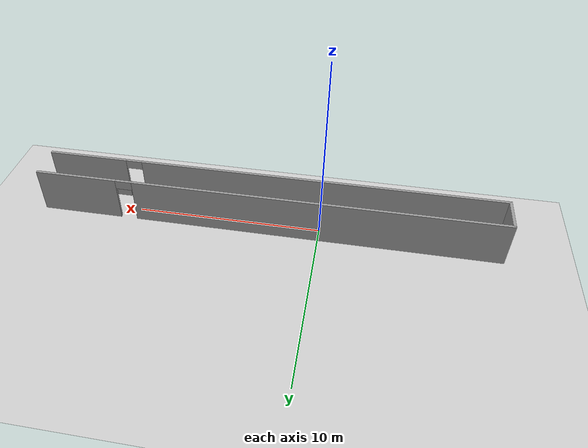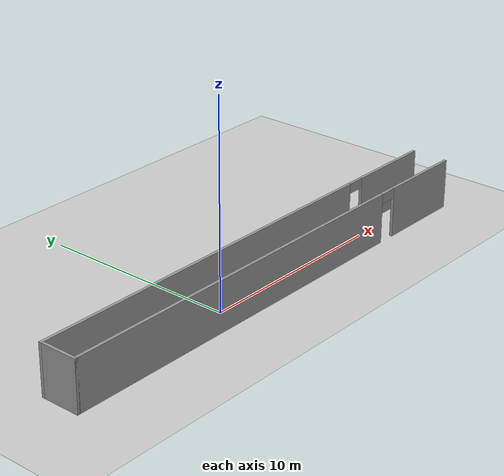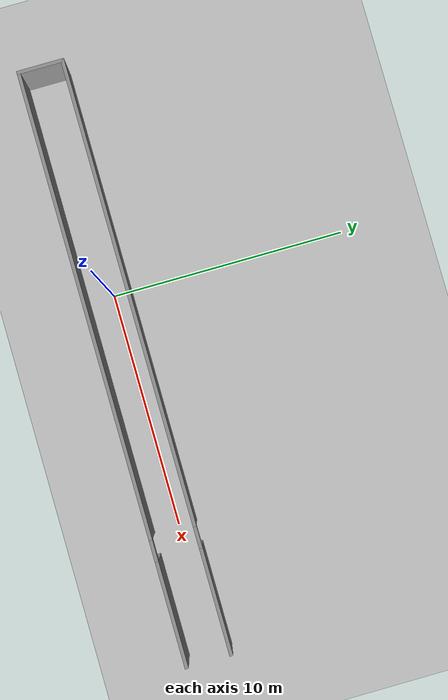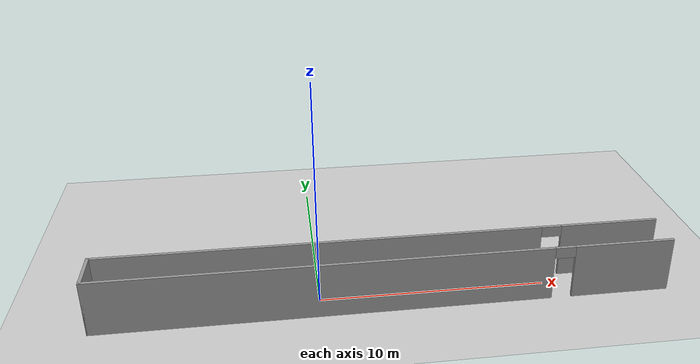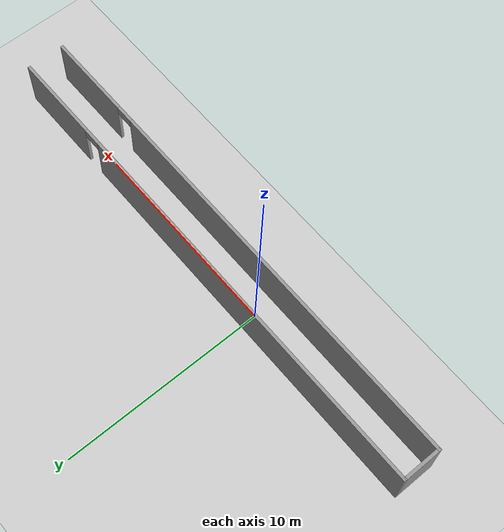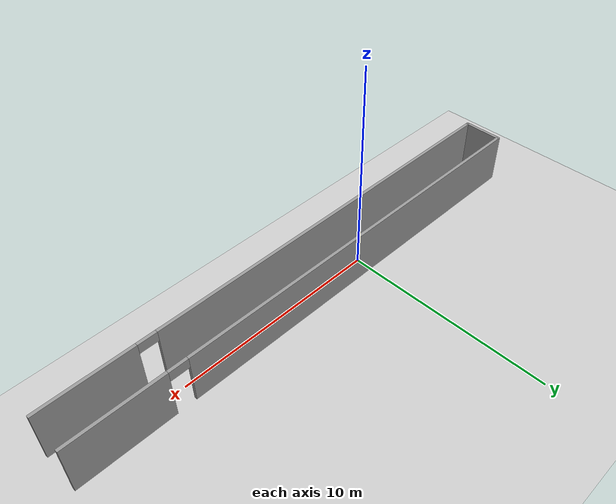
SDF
<sdf version="1.6">
 <world name="default">
  <light name="sun" type="directional">
   <pose>0 0 10 0 -0 0</pose>
   <diffuse>0.8 0.8 0.8 1</diffuse>
   <specular>0.2 0.2 0.2 1</specular>
   <attenuation>
    <range>1000</range>
    <constant>0.9</constant>
    <linear>0.01</linear>
    <quadratic>0.001</quadratic>
   </attenuation>
   <direction>-0.5 0.1 -0.9</direction>
  </light>
  <model name="ground_plane">
   <static>1</static>
   <link name="link">
    <collision name="collision">
     <geometry><plane><normal>0 0 1</normal><size>100 100</size></plane></geometry>
     <surface>
      <contact><collide_bitmask>65535</collide_bitmask></contact>
      <friction><ode><mu>100</mu><mu2>50</mu2></ode></friction>
     </surface>
    </collision>
    <visual name="visual">
     <cast_shadows>0</cast_shadows>
     <geometry><plane><normal>0 0 1</normal><size>100 100</size></plane></geometry>
     <material>
      <script><uri>file://media/materials/scripts/gazebo.material</uri><name>Gazebo/Grey</name></script>
     </material>
    </visual>
   </link>
  </model>
  <gravity>0 0 -9.8</gravity>
  <magnetic_field>6e-06 2.3e-05 -4.2e-05</magnetic_field>
  <atmosphere type="adiabatic"/>
  <physics name="default_physics" default="0" type="ode">
   <max_step_size>0.001</max_step_size>
   <real_time_factor>1</real_time_factor>
   <real_time_update_rate>1000</real_time_update_rate>
  </physics>
  <scene><ambient>0.4 0.4 0.4 1</ambient><background>0.7 0.7 0.7 1</background><shadows>1</shadows></scene>
  <spherical_coordinates>
   <surface_model>EARTH_WGS84</surface_model>
   <latitude_deg>0</latitude_deg>
   <longitude_deg>0</longitude_deg>
   <elevation>0</elevation>
   <heading_deg>0</heading_deg>
  </spherical_coordinates>
  <model name="symetryczny_korytarz">
   <pose>2.87638 0.94606 0 0 -0 0</pose>
   <link name="Wall_0">
    <pose>0 -0.2425 0 0 -0 3.14159</pose>
    <visual name="Wall_0_Visual_0">
     <pose>-10.274 0 1.25 0 -0 0</pose>
     <geometry><box><size>4.45202 0.15 2.5</size></box></geometry>
     <material>
      <script><uri>file://media/materials/scripts/gazebo.material</uri><name>Gazebo/Grey</name></script>
      <ambient>1 1 1 1</ambient>
     </material>
     <meta><layer>0</layer></meta>
    </visual>
    <collision name="Wall_0_Collision_0">
     <geometry><box><size>4.45202 0.15 2.5</size></box></geometry>
     <pose>-10.274 0 1.25 0 -0 0</pose>
    </collision>
    <visual name="Wall_0_Visual_1">
     <pose>2.67601 0 1.25 0 -0 0</pose>
     <geometry><box><size>19.648 0.15 2.5</size></box></geometry>
     <material>
      <script><uri>file://media/materials/scripts/gazebo.material</uri><name>Gazebo/Grey</name></script>
      <ambient>1 1 1 1</ambient>
     </material>
     <meta><layer>0</layer></meta>
    </visual>
    <collision name="Wall_0_Collision_1">
     <geometry><box><size>19.648 0.15 2.5</size></box></geometry>
     <pose>2.67601 0 1.25 0 -0 0</pose>
    </collision>
    <visual name="Wall_0_Visual_2">
     <pose>-7.59799 0 2.25 0 -0 0</pose>
     <geometry><box><size>0.9 0.15 0.5</size></box></geometry>
     <material>
      <script><uri>file://media/materials/scripts/gazebo.material</uri><name>Gazebo/Grey</name></script>
      <ambient>1 1 1 1</ambient>
     </material>
     <meta><layer>0</layer></meta>
    </visual>
    <collision name="Wall_0_Collision_2">
     <geometry><box><size>0.9 0.15 0.5</size></box></geometry>
     <pose>-7.59799 0 2.25 0 -0 0</pose>
    </collision>
   </link>
   <link name="Wall_1">
    <collision name="Wall_1_Collision">
     <geometry><box><size>2 0.15 2.5</size></box></geometry>
     <pose>0 0 1.25 0 -0 0</pose>
    </collision>
    <visual name="Wall_1_Visual">
     <pose>0 0 1.25 0 -0 0</pose>
     <geometry><box><size>2 0.15 2.5</size></box></geometry>
     <material>
      <script><uri>file://media/materials/scripts/gazebo.material</uri><name>Gazebo/Grey</name></script>
      <ambient>1 1 1 1</ambient>
     </material>
     <meta><layer>0</layer></meta>
    </visual>
    <pose>-12.425 -1.1675 0 0 -0 -1.5708</pose>
   </link>
   <link name="Wall_2">
    <pose>0 -2.0925 0 0 -0 0</pose>
    <visual name="Wall_2_Visual_0">
     <pose>-2.65589 0 1.25 0 -0 0</pose>
     <geometry><box><size>19.6882 0.15 2.5</size></box></geometry>
     <material>
      <script><uri>file://media/materials/scripts/gazebo.material</uri><name>Gazebo/Grey</name></script>
      <ambient>1 1 1 1</ambient>
     </material>
     <meta><layer>0</layer></meta>
    </visual>
    <collision name="Wall_2_Collision_0">
     <geometry><box><size>19.6882 0.15 2.5</size></box></geometry>
     <pose>-2.65589 0 1.25 0 -0 0</pose>
    </collision>
    <visual name="Wall_2_Visual_1">
     <pose>10.2941 0 1.25 0 -0 0</pose>
     <geometry><box><size>4.41179 0.15 2.5</size></box></geometry>
     <material>
      <script><uri>file://media/materials/scripts/gazebo.material</uri><name>Gazebo/Grey</name></script>
      <ambient>1 1 1 1</ambient>
     </material>
     <meta><layer>0</layer></meta>
    </visual>
    <collision name="Wall_2_Collision_1">
     <geometry><box><size>4.41179 0.15 2.5</size></box></geometry>
     <pose>10.2941 0 1.25 0 -0 0</pose>
    </collision>
    <visual name="Wall_2_Visual_2">
     <pose>7.63821 0 2.25 0 -0 0</pose>
     <geometry><box><size>0.9 0.15 0.5</size></box></geometry>
     <material>
      <script><uri>file://media/materials/scripts/gazebo.material</uri><name>Gazebo/Grey</name></script>
      <ambient>1 1 1 1</ambient>
     </material>
     <meta><layer>0</layer></meta>
    </visual>
    <collision name="Wall_2_Collision_2">
     <geometry><box><size>0.9 0.15 0.5</size></box></geometry>
     <pose>7.63821 0 2.25 0 -0 0</pose>
    </collision>
   </link>
   <static>1</static>
  </model>
 </world>
</sdf>
